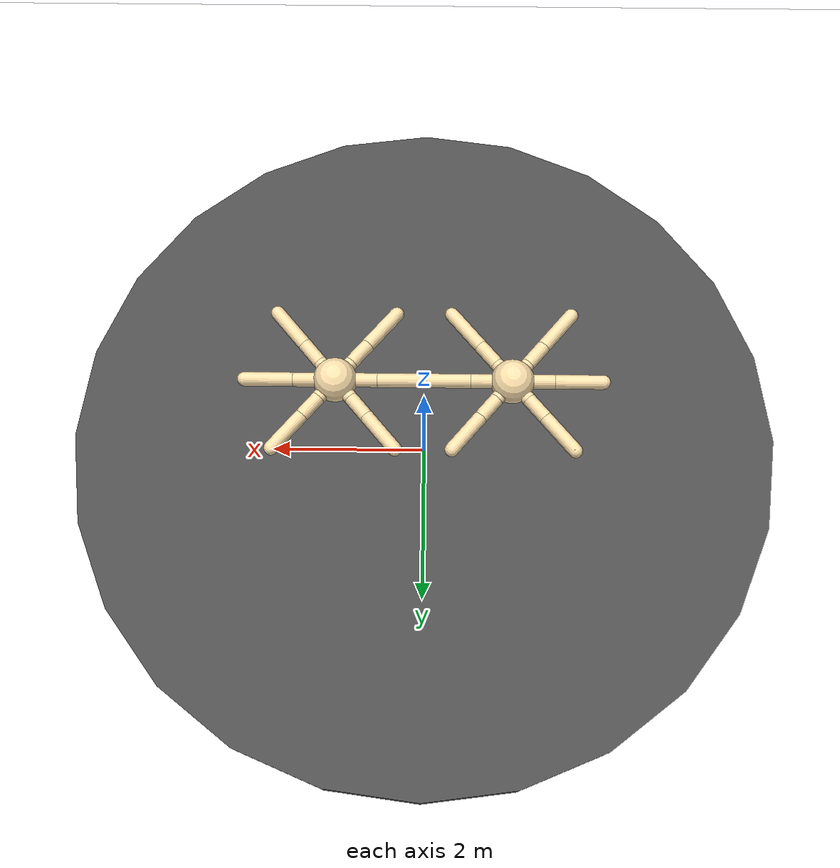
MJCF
<mujoco model="mutiagent_world">
  <compiler angle="degree" coordinate="local" inertiafromgeom="true" />
  <option integrator="RK4" timestep="0.003" solver="PGS" iterations="1000" />
  <default>
    <joint armature="1" damping="1" limited="true" />
  <default class="agent0"><geom conaffinity="1" condim="3" density="5.0" friction="1 0.5 0.5" margin="0.01" rgba="0.98 0.87 0.67 1" material="geom" />
    <motor ctrllimited="true" ctrlrange="-1. 1." />
  </default><default class="agent1"><geom conaffinity="1" condim="3" density="5.0" friction="1 0.5 0.5" margin="0.01" rgba="0.98 0.87 0.67 1" material="geom" />
    <motor ctrllimited="true" ctrlrange="-1. 1." />
  </default></default>
  <visual>
    <headlight ambient=".1 .1 .1" diffuse=".6 .6 .6" specular="0.3 0.3 0.3" />
    <map znear=".01" />
    <quality shadowsize="16384" />
  </visual>
  <asset>
    <texture builtin="gradient" height="100" rgb1="1 1 1" rgb2="0 0 0" type="skybox" width="100" />
    <texture builtin="flat" height="1278" mark="cross" markrgb="0 0 0" name="texgeom" random="0.01" rgb1="0.8 0.6 0.4" rgb2="0.8 0.6 0.4" type="cube" width="127" />
    <texture builtin="checker" height="100" name="texplane" rgb1="0.5 0.5 0.5" rgb2="0.5 0.5 0.5" type="2d" width="100" markrgb="0.2 0.2 0.2" mark="edge" />
    <texture name="MatPlane" type="2d" builtin="checker" rgb1=".5 .5 .5" rgb2=".5 .5 .5" width="300" height="300" mark="edge" markrgb="0.1 0.1 0.1" />
    <material name="MatPlane" texture="MatPlane" texrepeat="2 2" texuniform="true" reflectance=".2" />
    <material name="geom" texture="texgeom" texuniform="true" />
  </asset>
  <worldbody>
    <light cutoff="100" diffuse="1 1 1" dir="-0 0 -1.3" directional="true" exponent="1" pos="0 0 1.3" specular=".1 .1 .1" />
    <geom contype="1" conaffinity="1" friction="1 .1 .1" condim="3" material="MatPlane" name="floor" pos="0 0 0" rgba="1 1 1 1" size="20 20 0.125" type="plane" />
    <geom fromto="4 -5 0  4 +5 0" name="rightgoal" rgba="0.6 0.0 0.0 0" size=".03" type="cylinder" />
    <geom fromto="-4 -5 0  -4 +5 0" name="leftgoal" rgba="0.6 0.0 0.0 0" size=".03" type="cylinder" />
    <geom conaffinity="1" condim="3" contype="1" friction="1 .1 .1" name="arena" size="4.5 .25" type="cylinder" pos="0 0 0.25" rgba="0.3 0.3 0.3 1" />
  <body name="agent0/torso" pos="-1 0 2.5">
    <geom name="agent0/torso_geom" pos="0 0 0" size="0.25" type="sphere" class="agent0" />
    <joint armature="0" damping="0" limited="false" margin="0.01" name="agent0/root" pos="0 0 0" type="free" />

    <body name="agent0/back_left_leg" pos="0 0 0">
      <geom fromto="0 0 0 0.18 0.215 0" name="agent0/aux_1_geom" size="0.08" type="capsule" class="agent0" />
      <body name="agent0/aux_11" pos="0.18 0.215 0">
        <joint axis="0 0 1" name="agent0/hip_1" pos="0 0 0" range="-30 30" type="hinge" />
        <geom fromto="0 0 0 0.18 0.215 0" name="agent0/back_left_leg_geom" size="0.08" type="capsule" class="agent0" />
        <body name="agent0/aux_12" pos="0.18 0.215 0">
          <joint axis="-1 1 0" name="agent0/ankle_1" pos="0 0 0" range="30 70" type="hinge" />
          <geom fromto="0 0 0 0.324 0.387 0" name="agent0/back_left_ankle_geom" size="0.08" type="capsule" class="agent0" />
        </body>
      </body>
    </body>

    <body name="agent0/back_right_leg" pos="0 0 0">
      <geom fromto="0 0 0 -0.18 0.215 0" name="agent0/aux_2_geom" size="0.08" type="capsule" class="agent0" />
      <body name="agent0/aux_21" pos="-0.18 0.215 0">
        <joint axis="0 0 1" name="agent0/hip_2" pos="0 0 0" range="-30 30" type="hinge" />
        <geom fromto="0 0 0 -0.18 0.215 0" name="agent0/back_right_leg_geom" size="0.08" type="capsule" class="agent0" />
        <body name="agent0/aux_22" pos="-0.18 0.215 0">
          <joint axis="1 1 0" name="agent0/ankle_2" pos="0 0 0" range="-70 -30" type="hinge" />
          <geom fromto="0 0 0 -0.324 0.387 0" name="agent0/back_right_ankle_geom" size="0.08" type="capsule" class="agent0" />
        </body>
      </body>
    </body>

    <body name="agent0/middle_right_leg" pos="0 0 0">
      <geom fromto="0 0 0 -0.2 0 0" name="agent0/aux_3_geom" size="0.08" type="capsule" class="agent0" />
      <body name="agent0/aux_31" pos="-0.2 0 0">
        <joint axis="0 0 1" name="agent0/hip_3" pos="0 0 0" range="-30 30" type="hinge" />
        <geom fromto="0 0 0 -0.275 0 0" name="agent0/middle_right_leg_geom" size="0.08" type="capsule" class="agent0" />
        <body name="agent0/aux_32" pos="-0.275 0 0">
          <joint axis="0 1 0" name="agent0/ankle_3" pos="0 0 0" range="-70 -30" type="hinge" />
          <geom fromto="0 0 0 -0.55 0 0" name="agent0/middle_right_ankle_geom" size="0.08" type="capsule" class="agent0" />
        </body>
      </body>
    </body>

    <body name="agent0/middle_left_leg" pos="0 0 0">
      <geom fromto="0 0 0 0.2 0 0" name="agent0/aux_4_geom" size="0.08" type="capsule" class="agent0" />
      <body name="agent0/aux_41" pos="0.2 0 0">
        <joint axis="0 0 1" name="agent0/hip_4" pos="0 0 0" range="-30 30" type="hinge" />
        <geom fromto="0 0 0 0.275 0 0" name="agent0/middle_left_leg_geom" size="0.08" type="capsule" class="agent0" />
        <body name="agent0/aux_42" pos="0.275 0 0">
          <joint axis="0 1 0" name="agent0/ankle_4" pos="0 0 0" range="30 70" type="hinge" />
          <geom fromto="0 0 0 0.55 0 0" name="agent0/middle_left_ankle_geom" size="0.08" type="capsule" class="agent0" />
        </body>
      </body>
    </body>

    <body name="agent0/front_right_leg" pos="0 0 0">
      <geom fromto="0 0 0 -0.18 -0.215 0" name="agent0/aux_5_geom" size="0.08" type="capsule" class="agent0" />
      <body name="agent0/aux_51" pos="-0.18 -0.215 0">
        <joint axis="0 0 1" name="agent0/hip_5" pos="0 0 0" range="-30 30" type="hinge" />
        <geom fromto="0 0 0 -0.18 -0.215 0" name="agent0/front_right_leg_geom" size="0.08" type="capsule" class="agent0" />
        <body name="agent0/aux_52" pos="-0.18 -0.215 0">
          <joint axis="-1 1 0" name="agent0/ankle_5" pos="0 0 0" range="-70 -30" type="hinge" />
          <geom fromto="0 0 0 -0.324 -0.387 0" name="agent0/front_right_ankle_geom" size="0.08" type="capsule" class="agent0" />
        </body>
      </body>
    </body>

    <body name="agent0/front_left_leg" pos="0 0 0">
      <geom fromto="0 0 0 0.18 -0.215 0" name="agent0/aux_6_geom" size="0.08" type="capsule" class="agent0" />
      <body name="agent0/aux_61" pos="0.18 -0.215 0">
        <joint axis="0 0 1" name="agent0/hip_6" pos="0 0 0" range="-30 30" type="hinge" />
        <geom fromto="0 0 0 0.18 -0.215 0" name="agent0/front_left_leg_geom" size="0.08" type="capsule" class="agent0" />
        <body name="agent0/aux_62" pos="0.18 -0.215 0">
          <joint axis="1 1 0" name="agent0/ankle_6" pos="0 0 0" range="30 70" type="hinge" />
          <geom fromto="0 0 0 0.324 -0.387 0" name="agent0/front_left_ankle_geom" size="0.08" type="capsule" class="agent0" />
        </body>
      </body>
    </body>
  </body>
  <body name="agent1/torso" pos="1 0 2.5">
    <geom name="agent1/torso_geom" pos="0 0 0" size="0.25" type="sphere" class="agent1" />
    <joint armature="0" damping="0" limited="false" margin="0.01" name="agent1/root" pos="0 0 0" type="free" />

    <body name="agent1/back_left_leg" pos="0 0 0">
      <geom fromto="0 0 0 0.18 0.215 0" name="agent1/aux_1_geom" size="0.08" type="capsule" class="agent1" />
      <body name="agent1/aux_11" pos="0.18 0.215 0">
        <joint axis="0 0 1" name="agent1/hip_1" pos="0 0 0" range="-30 30" type="hinge" />
        <geom fromto="0 0 0 0.18 0.215 0" name="agent1/back_left_leg_geom" size="0.08" type="capsule" class="agent1" />
        <body name="agent1/aux_12" pos="0.18 0.215 0">
          <joint axis="-1 1 0" name="agent1/ankle_1" pos="0 0 0" range="30 70" type="hinge" />
          <geom fromto="0 0 0 0.324 0.387 0" name="agent1/back_left_ankle_geom" size="0.08" type="capsule" class="agent1" />
        </body>
      </body>
    </body>

    <body name="agent1/back_right_leg" pos="0 0 0">
      <geom fromto="0 0 0 -0.18 0.215 0" name="agent1/aux_2_geom" size="0.08" type="capsule" class="agent1" />
      <body name="agent1/aux_21" pos="-0.18 0.215 0">
        <joint axis="0 0 1" name="agent1/hip_2" pos="0 0 0" range="-30 30" type="hinge" />
        <geom fromto="0 0 0 -0.18 0.215 0" name="agent1/back_right_leg_geom" size="0.08" type="capsule" class="agent1" />
        <body name="agent1/aux_22" pos="-0.18 0.215 0">
          <joint axis="1 1 0" name="agent1/ankle_2" pos="0 0 0" range="-70 -30" type="hinge" />
          <geom fromto="0 0 0 -0.324 0.387 0" name="agent1/back_right_ankle_geom" size="0.08" type="capsule" class="agent1" />
        </body>
      </body>
    </body>

    <body name="agent1/middle_right_leg" pos="0 0 0">
      <geom fromto="0 0 0 -0.2 0 0" name="agent1/aux_3_geom" size="0.08" type="capsule" class="agent1" />
      <body name="agent1/aux_31" pos="-0.2 0 0">
        <joint axis="0 0 1" name="agent1/hip_3" pos="0 0 0" range="-30 30" type="hinge" />
        <geom fromto="0 0 0 -0.275 0 0" name="agent1/middle_right_leg_geom" size="0.08" type="capsule" class="agent1" />
        <body name="agent1/aux_32" pos="-0.275 0 0">
          <joint axis="0 1 0" name="agent1/ankle_3" pos="0 0 0" range="-70 -30" type="hinge" />
          <geom fromto="0 0 0 -0.55 0 0" name="agent1/middle_right_ankle_geom" size="0.08" type="capsule" class="agent1" />
        </body>
      </body>
    </body>

    <body name="agent1/middle_left_leg" pos="0 0 0">
      <geom fromto="0 0 0 0.2 0 0" name="agent1/aux_4_geom" size="0.08" type="capsule" class="agent1" />
      <body name="agent1/aux_41" pos="0.2 0 0">
        <joint axis="0 0 1" name="agent1/hip_4" pos="0 0 0" range="-30 30" type="hinge" />
        <geom fromto="0 0 0 0.275 0 0" name="agent1/middle_left_leg_geom" size="0.08" type="capsule" class="agent1" />
        <body name="agent1/aux_42" pos="0.275 0 0">
          <joint axis="0 1 0" name="agent1/ankle_4" pos="0 0 0" range="30 70" type="hinge" />
          <geom fromto="0 0 0 0.55 0 0" name="agent1/middle_left_ankle_geom" size="0.08" type="capsule" class="agent1" />
        </body>
      </body>
    </body>

    <body name="agent1/front_right_leg" pos="0 0 0">
      <geom fromto="0 0 0 -0.18 -0.215 0" name="agent1/aux_5_geom" size="0.08" type="capsule" class="agent1" />
      <body name="agent1/aux_51" pos="-0.18 -0.215 0">
        <joint axis="0 0 1" name="agent1/hip_5" pos="0 0 0" range="-30 30" type="hinge" />
        <geom fromto="0 0 0 -0.18 -0.215 0" name="agent1/front_right_leg_geom" size="0.08" type="capsule" class="agent1" />
        <body name="agent1/aux_52" pos="-0.18 -0.215 0">
          <joint axis="-1 1 0" name="agent1/ankle_5" pos="0 0 0" range="-70 -30" type="hinge" />
          <geom fromto="0 0 0 -0.324 -0.387 0" name="agent1/front_right_ankle_geom" size="0.08" type="capsule" class="agent1" />
        </body>
      </body>
    </body>

    <body name="agent1/front_left_leg" pos="0 0 0">
      <geom fromto="0 0 0 0.18 -0.215 0" name="agent1/aux_6_geom" size="0.08" type="capsule" class="agent1" />
      <body name="agent1/aux_61" pos="0.18 -0.215 0">
        <joint axis="0 0 1" name="agent1/hip_6" pos="0 0 0" range="-30 30" type="hinge" />
        <geom fromto="0 0 0 0.18 -0.215 0" name="agent1/front_left_leg_geom" size="0.08" type="capsule" class="agent1" />
        <body name="agent1/aux_62" pos="0.18 -0.215 0">
          <joint axis="1 1 0" name="agent1/ankle_6" pos="0 0 0" range="30 70" type="hinge" />
          <geom fromto="0 0 0 0.324 -0.387 0" name="agent1/front_left_ankle_geom" size="0.08" type="capsule" class="agent1" />
        </body>
      </body>
    </body>
  </body>
  </worldbody>
<actuator>
    <motor ctrllimited="true" ctrlrange="-1.0 1.0" joint="agent0/hip_1" gear="150" class="agent0" />
    <motor ctrllimited="true" ctrlrange="-1.0 1.0" joint="agent0/ankle_1" gear="150" class="agent0" />
    <motor ctrllimited="true" ctrlrange="-1.0 1.0" joint="agent0/hip_2" gear="150" class="agent0" />
    <motor ctrllimited="true" ctrlrange="-1.0 1.0" joint="agent0/ankle_2" gear="150" class="agent0" />
    <motor ctrllimited="true" ctrlrange="-1.0 1.0" joint="agent0/hip_3" gear="150" class="agent0" />
    <motor ctrllimited="true" ctrlrange="-1.0 1.0" joint="agent0/ankle_3" gear="150" class="agent0" />
    <motor ctrllimited="true" ctrlrange="-1.0 1.0" joint="agent0/hip_4" gear="150" class="agent0" />
    <motor ctrllimited="true" ctrlrange="-1.0 1.0" joint="agent0/ankle_4" gear="150" class="agent0" />
    <motor ctrllimited="true" ctrlrange="-1.0 1.0" joint="agent0/hip_5" gear="150" class="agent0" />
    <motor ctrllimited="true" ctrlrange="-1.0 1.0" joint="agent0/ankle_5" gear="150" class="agent0" />
    <motor ctrllimited="true" ctrlrange="-1.0 1.0" joint="agent0/hip_6" gear="150" class="agent0" />
    <motor ctrllimited="true" ctrlrange="-1.0 1.0" joint="agent0/ankle_6" gear="150" class="agent0" />
  <motor ctrllimited="true" ctrlrange="-1.0 1.0" joint="agent1/hip_1" gear="150" class="agent1" />
    <motor ctrllimited="true" ctrlrange="-1.0 1.0" joint="agent1/ankle_1" gear="150" class="agent1" />
    <motor ctrllimited="true" ctrlrange="-1.0 1.0" joint="agent1/hip_2" gear="150" class="agent1" />
    <motor ctrllimited="true" ctrlrange="-1.0 1.0" joint="agent1/ankle_2" gear="150" class="agent1" />
    <motor ctrllimited="true" ctrlrange="-1.0 1.0" joint="agent1/hip_3" gear="150" class="agent1" />
    <motor ctrllimited="true" ctrlrange="-1.0 1.0" joint="agent1/ankle_3" gear="150" class="agent1" />
    <motor ctrllimited="true" ctrlrange="-1.0 1.0" joint="agent1/hip_4" gear="150" class="agent1" />
    <motor ctrllimited="true" ctrlrange="-1.0 1.0" joint="agent1/ankle_4" gear="150" class="agent1" />
    <motor ctrllimited="true" ctrlrange="-1.0 1.0" joint="agent1/hip_5" gear="150" class="agent1" />
    <motor ctrllimited="true" ctrlrange="-1.0 1.0" joint="agent1/ankle_5" gear="150" class="agent1" />
    <motor ctrllimited="true" ctrlrange="-1.0 1.0" joint="agent1/hip_6" gear="150" class="agent1" />
    <motor ctrllimited="true" ctrlrange="-1.0 1.0" joint="agent1/ankle_6" gear="150" class="agent1" />
  </actuator>
  </mujoco>
